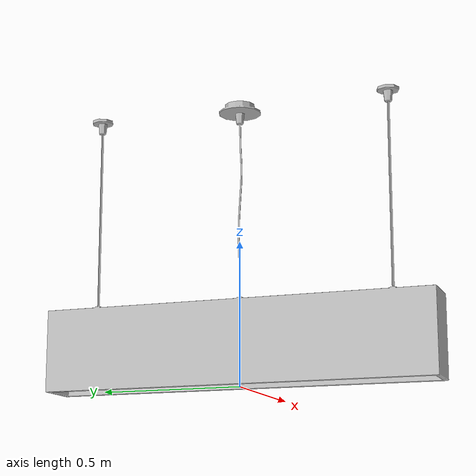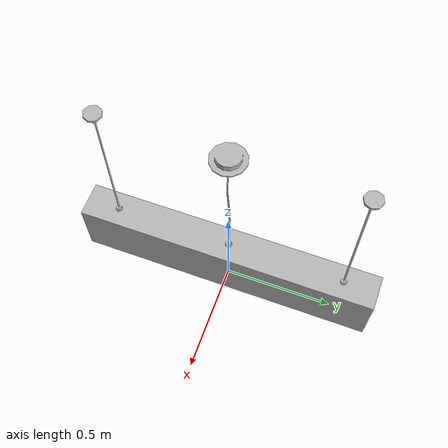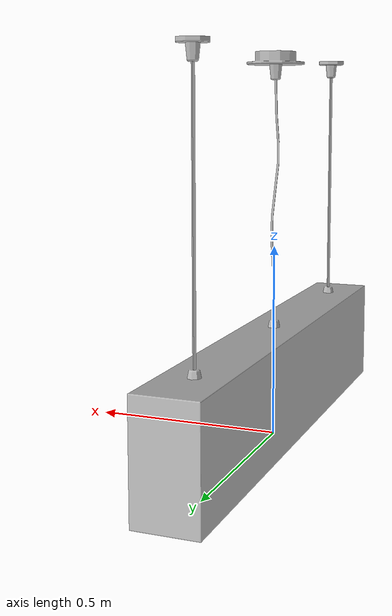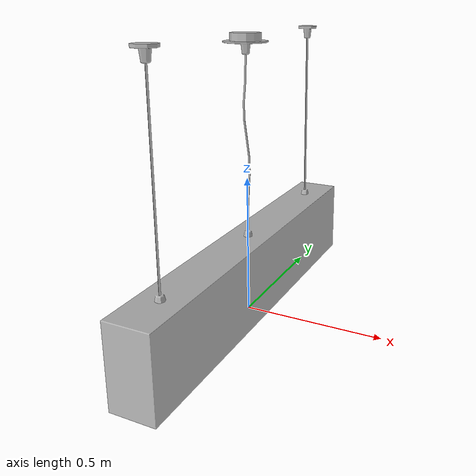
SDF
<?xml version='1.0'?>
<sdf version='1.4'>
  <model name='s__1883'>
    <pose>0 0 0 0 0 0</pose>
    <static>true</static>
    <link name='link'>
      <collision name='collision'>
        <pose>0 0 0 0 0 0</pose>
        <geometry>
          <box>
            <size>0.16 1.38006 2</size>
          </box>
        </geometry>
      </collision>
      <visual name='visual'>
        <pose>0 0 0 0 0 0</pose>
        <geometry>
          <mesh><uri>model://s__1883/s__1883.dae</uri></mesh>
        </geometry>
      </visual>
    </link>
  </model>
</sdf>
